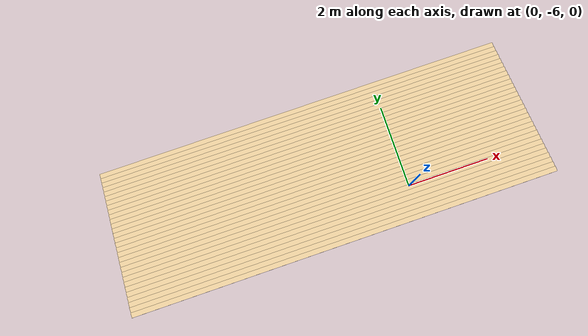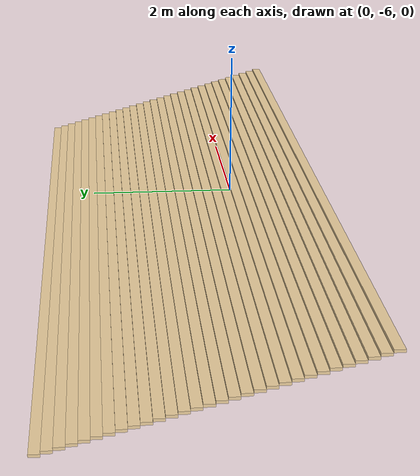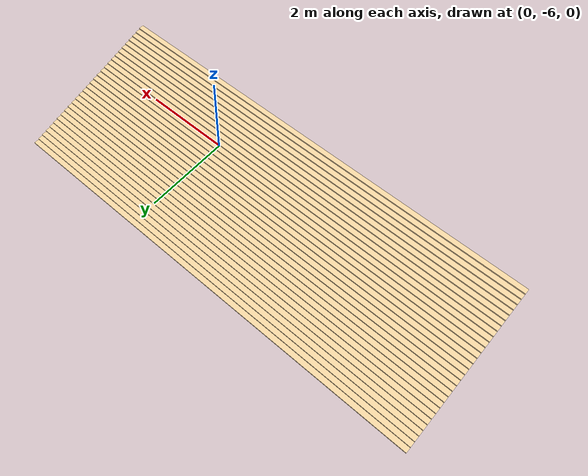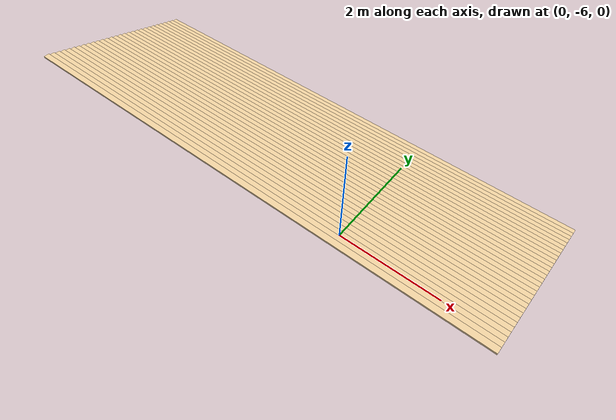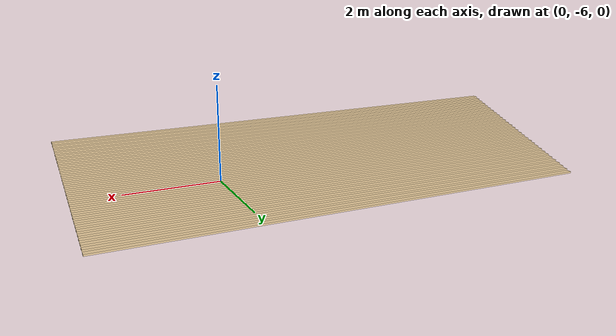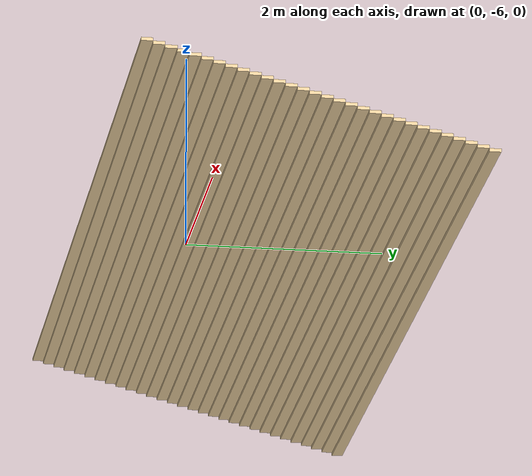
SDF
<?xml version='1.0'?>
<sdf version='1.7'>
  <model name='stair0702'>
    <pose>-1.88 -3.42 0 0 -0 0</pose>
    <link name='Stairs_1'>
      <visual name='Stairs_1_Visual_0'>
        <pose>0 0.021667 0.016667 0 -0 0</pose>
        <geometry>
          <box>
            <size>10 0.116667 0.033333</size>
          </box>
        </geometry>
        <material>
          <script>
            <uri>file://media/materials/scripts/gazebo.material</uri>
            <name>Gazebo/Grey</name>
          </script>
          <ambient>0.921569 0.807843 0.615686 1</ambient>
        </material>
        <meta>
          <layer>0</layer>
        </meta>
      </visual>
      <collision name='Stairs_1_Collision_0'>
        <geometry>
          <box>
            <size>10 0.116667 0.033333</size>
          </box>
        </geometry>
        <pose>0 0.021667 0.016667 0 -0 0</pose>
      </collision>
      <visual name='Stairs_1_Visual_1'>
        <pose>0 -0.095 0.05 0 -0 0</pose>
        <geometry>
          <box>
            <size>10 0.116667 0.033333</size>
          </box>
        </geometry>
        <material>
          <script>
            <uri>file://media/materials/scripts/gazebo.material</uri>
            <name>Gazebo/Grey</name>
          </script>
          <ambient>0.921569 0.807843 0.615686 1</ambient>
        </material>
        <meta>
          <layer>0</layer>
        </meta>
      </visual>
      <collision name='Stairs_1_Collision_1'>
        <geometry>
          <box>
            <size>10 0.116667 0.033333</size>
          </box>
        </geometry>
        <pose>0 -0.095 0.05 0 -0 0</pose>
      </collision>
      <visual name='Stairs_1_Visual_2'>
        <pose>0 -0.211667 0.083333 0 -0 0</pose>
        <geometry>
          <box>
            <size>10 0.116667 0.033333</size>
          </box>
        </geometry>
        <material>
          <script>
            <uri>file://media/materials/scripts/gazebo.material</uri>
            <name>Gazebo/Grey</name>
          </script>
          <ambient>0.921569 0.807843 0.615686 1</ambient>
        </material>
        <meta>
          <layer>0</layer>
        </meta>
      </visual>
      <collision name='Stairs_1_Collision_2'>
        <geometry>
          <box>
            <size>10 0.116667 0.033333</size>
          </box>
        </geometry>
        <pose>0 -0.211667 0.083333 0 -0 0</pose>
      </collision>
      <visual name='Stairs_1_Visual_3'>
        <pose>0 -0.328333 0.116667 0 -0 0</pose>
        <geometry>
          <box>
            <size>10 0.116667 0.033333</size>
          </box>
        </geometry>
        <material>
          <script>
            <uri>file://media/materials/scripts/gazebo.material</uri>
            <name>Gazebo/Grey</name>
          </script>
          <ambient>0.921569 0.807843 0.615686 1</ambient>
        </material>
        <meta>
          <layer>0</layer>
        </meta>
      </visual>
      <collision name='Stairs_1_Collision_3'>
        <geometry>
          <box>
            <size>10 0.116667 0.033333</size>
          </box>
        </geometry>
        <pose>0 -0.328333 0.116667 0 -0 0</pose>
      </collision>
      <visual name='Stairs_1_Visual_4'>
        <pose>0 -0.445 0.15 0 -0 0</pose>
        <geometry>
          <box>
            <size>10 0.116667 0.033333</size>
          </box>
        </geometry>
        <material>
          <script>
            <uri>file://media/materials/scripts/gazebo.material</uri>
            <name>Gazebo/Grey</name>
          </script>
          <ambient>0.921569 0.807843 0.615686 1</ambient>
        </material>
        <meta>
          <layer>0</layer>
        </meta>
      </visual>
      <collision name='Stairs_1_Collision_4'>
        <geometry>
          <box>
            <size>10 0.116667 0.033333</size>
          </box>
        </geometry>
        <pose>0 -0.445 0.15 0 -0 0</pose>
      </collision>
      <visual name='Stairs_1_Visual_5'>
        <pose>0 -0.561667 0.183333 0 -0 0</pose>
        <geometry>
          <box>
            <size>10 0.116667 0.033333</size>
          </box>
        </geometry>
        <material>
          <script>
            <uri>file://media/materials/scripts/gazebo.material</uri>
            <name>Gazebo/Grey</name>
          </script>
          <ambient>0.921569 0.807843 0.615686 1</ambient>
        </material>
        <meta>
          <layer>0</layer>
        </meta>
      </visual>
      <collision name='Stairs_1_Collision_5'>
        <geometry>
          <box>
            <size>10 0.116667 0.033333</size>
          </box>
        </geometry>
        <pose>0 -0.561667 0.183333 0 -0 0</pose>
      </collision>
      <visual name='Stairs_1_Visual_6'>
        <pose>0 -0.678333 0.216667 0 -0 0</pose>
        <geometry>
          <box>
            <size>10 0.116667 0.033333</size>
          </box>
        </geometry>
        <material>
          <script>
            <uri>file://media/materials/scripts/gazebo.material</uri>
            <name>Gazebo/Grey</name>
          </script>
          <ambient>0.921569 0.807843 0.615686 1</ambient>
        </material>
        <meta>
          <layer>0</layer>
        </meta>
      </visual>
      <collision name='Stairs_1_Collision_6'>
        <geometry>
          <box>
            <size>10 0.116667 0.033333</size>
          </box>
        </geometry>
        <pose>0 -0.678333 0.216667 0 -0 0</pose>
      </collision>
      <visual name='Stairs_1_Visual_7'>
        <pose>0 -0.795 0.25 0 -0 0</pose>
        <geometry>
          <box>
            <size>10 0.116667 0.033333</size>
          </box>
        </geometry>
        <material>
          <script>
            <uri>file://media/materials/scripts/gazebo.material</uri>
            <name>Gazebo/Grey</name>
          </script>
          <ambient>0.921569 0.807843 0.615686 1</ambient>
        </material>
        <meta>
          <layer>0</layer>
        </meta>
      </visual>
      <collision name='Stairs_1_Collision_7'>
        <geometry>
          <box>
            <size>10 0.116667 0.033333</size>
          </box>
        </geometry>
        <pose>0 -0.795 0.25 0 -0 0</pose>
      </collision>
      <visual name='Stairs_1_Visual_8'>
        <pose>0 -0.911667 0.283333 0 -0 0</pose>
        <geometry>
          <box>
            <size>10 0.116667 0.033333</size>
          </box>
        </geometry>
        <material>
          <script>
            <uri>file://media/materials/scripts/gazebo.material</uri>
            <name>Gazebo/Grey</name>
          </script>
          <ambient>0.921569 0.807843 0.615686 1</ambient>
        </material>
        <meta>
          <layer>0</layer>
        </meta>
      </visual>
      <collision name='Stairs_1_Collision_8'>
        <geometry>
          <box>
            <size>10 0.116667 0.033333</size>
          </box>
        </geometry>
        <pose>0 -0.911667 0.283333 0 -0 0</pose>
      </collision>
      <visual name='Stairs_1_Visual_9'>
        <pose>0 -1.02833 0.316667 0 -0 0</pose>
        <geometry>
          <box>
            <size>10 0.116667 0.033333</size>
          </box>
        </geometry>
        <material>
          <script>
            <uri>file://media/materials/scripts/gazebo.material</uri>
            <name>Gazebo/Grey</name>
          </script>
          <ambient>0.921569 0.807843 0.615686 1</ambient>
        </material>
        <meta>
          <layer>0</layer>
        </meta>
      </visual>
      <collision name='Stairs_1_Collision_9'>
        <geometry>
          <box>
            <size>10 0.116667 0.033333</size>
          </box>
        </geometry>
        <pose>0 -1.02833 0.316667 0 -0 0</pose>
      </collision>
      <visual name='Stairs_1_Visual_10'>
        <pose>0 -1.145 0.35 0 -0 0</pose>
        <geometry>
          <box>
            <size>10 0.116667 0.033333</size>
          </box>
        </geometry>
        <material>
          <script>
            <uri>file://media/materials/scripts/gazebo.material</uri>
            <name>Gazebo/Grey</name>
          </script>
          <ambient>0.921569 0.807843 0.615686 1</ambient>
        </material>
        <meta>
          <layer>0</layer>
        </meta>
      </visual>
      <collision name='Stairs_1_Collision_10'>
        <geometry>
          <box>
            <size>10 0.116667 0.033333</size>
          </box>
        </geometry>
        <pose>0 -1.145 0.35 0 -0 0</pose>
      </collision>
      <visual name='Stairs_1_Visual_11'>
        <pose>0 -1.26167 0.383333 0 -0 0</pose>
        <geometry>
          <box>
            <size>10 0.116667 0.033333</size>
          </box>
        </geometry>
        <material>
          <script>
            <uri>file://media/materials/scripts/gazebo.material</uri>
            <name>Gazebo/Grey</name>
          </script>
          <ambient>0.921569 0.807843 0.615686 1</ambient>
        </material>
        <meta>
          <layer>0</layer>
        </meta>
      </visual>
      <collision name='Stairs_1_Collision_11'>
        <geometry>
          <box>
            <size>10 0.116667 0.033333</size>
          </box>
        </geometry>
        <pose>0 -1.26167 0.383333 0 -0 0</pose>
      </collision>
      <visual name='Stairs_1_Visual_12'>
        <pose>0 -1.37833 0.416667 0 -0 0</pose>
        <geometry>
          <box>
            <size>10 0.116667 0.033333</size>
          </box>
        </geometry>
        <material>
          <script>
            <uri>file://media/materials/scripts/gazebo.material</uri>
            <name>Gazebo/Grey</name>
          </script>
          <ambient>0.921569 0.807843 0.615686 1</ambient>
        </material>
        <meta>
          <layer>0</layer>
        </meta>
      </visual>
      <collision name='Stairs_1_Collision_12'>
        <geometry>
          <box>
            <size>10 0.116667 0.033333</size>
          </box>
        </geometry>
        <pose>0 -1.37833 0.416667 0 -0 0</pose>
      </collision>
      <visual name='Stairs_1_Visual_13'>
        <pose>0 -1.495 0.45 0 -0 0</pose>
        <geometry>
          <box>
            <size>10 0.116667 0.033333</size>
          </box>
        </geometry>
        <material>
          <script>
            <uri>file://media/materials/scripts/gazebo.material</uri>
            <name>Gazebo/Grey</name>
          </script>
          <ambient>0.921569 0.807843 0.615686 1</ambient>
        </material>
        <meta>
          <layer>0</layer>
        </meta>
      </visual>
      <collision name='Stairs_1_Collision_13'>
        <geometry>
          <box>
            <size>10 0.116667 0.033333</size>
          </box>
        </geometry>
        <pose>0 -1.495 0.45 0 -0 0</pose>
      </collision>
      <visual name='Stairs_1_Visual_14'>
        <pose>0 -1.61167 0.483333 0 -0 0</pose>
        <geometry>
          <box>
            <size>10 0.116667 0.033333</size>
          </box>
        </geometry>
        <material>
          <script>
            <uri>file://media/materials/scripts/gazebo.material</uri>
            <name>Gazebo/Grey</name>
          </script>
          <ambient>0.921569 0.807843 0.615686 1</ambient>
        </material>
        <meta>
          <layer>0</layer>
        </meta>
      </visual>
      <collision name='Stairs_1_Collision_14'>
        <geometry>
          <box>
            <size>10 0.116667 0.033333</size>
          </box>
        </geometry>
        <pose>0 -1.61167 0.483333 0 -0 0</pose>
      </collision>
      <visual name='Stairs_1_Visual_15'>
        <pose>0 -1.72833 0.516667 0 -0 0</pose>
        <geometry>
          <box>
            <size>10 0.116667 0.033333</size>
          </box>
        </geometry>
        <material>
          <script>
            <uri>file://media/materials/scripts/gazebo.material</uri>
            <name>Gazebo/Grey</name>
          </script>
          <ambient>0.921569 0.807843 0.615686 1</ambient>
        </material>
        <meta>
          <layer>0</layer>
        </meta>
      </visual>
      <collision name='Stairs_1_Collision_15'>
        <geometry>
          <box>
            <size>10 0.116667 0.033333</size>
          </box>
        </geometry>
        <pose>0 -1.72833 0.516667 0 -0 0</pose>
      </collision>
      <visual name='Stairs_1_Visual_16'>
        <pose>0 -1.845 0.55 0 -0 0</pose>
        <geometry>
          <box>
            <size>10 0.116667 0.033333</size>
          </box>
        </geometry>
        <material>
          <script>
            <uri>file://media/materials/scripts/gazebo.material</uri>
            <name>Gazebo/Grey</name>
          </script>
          <ambient>0.921569 0.807843 0.615686 1</ambient>
        </material>
        <meta>
          <layer>0</layer>
        </meta>
      </visual>
      <collision name='Stairs_1_Collision_16'>
        <geometry>
          <box>
            <size>10 0.116667 0.033333</size>
          </box>
        </geometry>
        <pose>0 -1.845 0.55 0 -0 0</pose>
      </collision>
      <visual name='Stairs_1_Visual_17'>
        <pose>0 -1.96167 0.583333 0 -0 0</pose>
        <geometry>
          <box>
            <size>10 0.116667 0.033333</size>
          </box>
        </geometry>
        <material>
          <script>
            <uri>file://media/materials/scripts/gazebo.material</uri>
            <name>Gazebo/Grey</name>
          </script>
          <ambient>0.921569 0.807843 0.615686 1</ambient>
        </material>
        <meta>
          <layer>0</layer>
        </meta>
      </visual>
      <collision name='Stairs_1_Collision_17'>
        <geometry>
          <box>
            <size>10 0.116667 0.033333</size>
          </box>
        </geometry>
        <pose>0 -1.96167 0.583333 0 -0 0</pose>
      </collision>
      <visual name='Stairs_1_Visual_18'>
        <pose>0 -2.07833 0.616667 0 -0 0</pose>
        <geometry>
          <box>
            <size>10 0.116667 0.033333</size>
          </box>
        </geometry>
        <material>
          <script>
            <uri>file://media/materials/scripts/gazebo.material</uri>
            <name>Gazebo/Grey</name>
          </script>
          <ambient>0.921569 0.807843 0.615686 1</ambient>
        </material>
        <meta>
          <layer>0</layer>
        </meta>
      </visual>
      <collision name='Stairs_1_Collision_18'>
        <geometry>
          <box>
            <size>10 0.116667 0.033333</size>
          </box>
        </geometry>
        <pose>0 -2.07833 0.616667 0 -0 0</pose>
      </collision>
      <visual name='Stairs_1_Visual_19'>
        <pose>0 -2.195 0.65 0 -0 0</pose>
        <geometry>
          <box>
            <size>10 0.116667 0.033333</size>
          </box>
        </geometry>
        <material>
          <script>
            <uri>file://media/materials/scripts/gazebo.material</uri>
            <name>Gazebo/Grey</name>
          </script>
          <ambient>0.921569 0.807843 0.615686 1</ambient>
        </material>
        <meta>
          <layer>0</layer>
        </meta>
      </visual>
      <collision name='Stairs_1_Collision_19'>
        <geometry>
          <box>
            <size>10 0.116667 0.033333</size>
          </box>
        </geometry>
        <pose>0 -2.195 0.65 0 -0 0</pose>
      </collision>
      <visual name='Stairs_1_Visual_20'>
        <pose>0 -2.31167 0.683333 0 -0 0</pose>
        <geometry>
          <box>
            <size>10 0.116667 0.033333</size>
          </box>
        </geometry>
        <material>
          <script>
            <uri>file://media/materials/scripts/gazebo.material</uri>
            <name>Gazebo/Grey</name>
          </script>
          <ambient>0.921569 0.807843 0.615686 1</ambient>
        </material>
        <meta>
          <layer>0</layer>
        </meta>
      </visual>
      <collision name='Stairs_1_Collision_20'>
        <geometry>
          <box>
            <size>10 0.116667 0.033333</size>
          </box>
        </geometry>
        <pose>0 -2.31167 0.683333 0 -0 0</pose>
      </collision>
      <visual name='Stairs_1_Visual_21'>
        <pose>0 -2.42833 0.716667 0 -0 0</pose>
        <geometry>
          <box>
            <size>10 0.116667 0.033333</size>
          </box>
        </geometry>
        <material>
          <script>
            <uri>file://media/materials/scripts/gazebo.material</uri>
            <name>Gazebo/Grey</name>
          </script>
          <ambient>0.921569 0.807843 0.615686 1</ambient>
        </material>
        <meta>
          <layer>0</layer>
        </meta>
      </visual>
      <collision name='Stairs_1_Collision_21'>
        <geometry>
          <box>
            <size>10 0.116667 0.033333</size>
          </box>
        </geometry>
        <pose>0 -2.42833 0.716667 0 -0 0</pose>
      </collision>
      <visual name='Stairs_1_Visual_22'>
        <pose>0 -2.545 0.75 0 -0 0</pose>
        <geometry>
          <box>
            <size>10 0.116667 0.033333</size>
          </box>
        </geometry>
        <material>
          <script>
            <uri>file://media/materials/scripts/gazebo.material</uri>
            <name>Gazebo/Grey</name>
          </script>
          <ambient>0.921569 0.807843 0.615686 1</ambient>
        </material>
        <meta>
          <layer>0</layer>
        </meta>
      </visual>
      <collision name='Stairs_1_Collision_22'>
        <geometry>
          <box>
            <size>10 0.116667 0.033333</size>
          </box>
        </geometry>
        <pose>0 -2.545 0.75 0 -0 0</pose>
      </collision>
      <visual name='Stairs_1_Visual_23'>
        <pose>0 -2.66167 0.783333 0 -0 0</pose>
        <geometry>
          <box>
            <size>10 0.116667 0.033333</size>
          </box>
        </geometry>
        <material>
          <script>
            <uri>file://media/materials/scripts/gazebo.material</uri>
            <name>Gazebo/Grey</name>
          </script>
          <ambient>0.921569 0.807843 0.615686 1</ambient>
        </material>
        <meta>
          <layer>0</layer>
        </meta>
      </visual>
      <collision name='Stairs_1_Collision_23'>
        <geometry>
          <box>
            <size>10 0.116667 0.033333</size>
          </box>
        </geometry>
        <pose>0 -2.66167 0.783333 0 -0 0</pose>
      </collision>
      <visual name='Stairs_1_Visual_24'>
        <pose>0 -2.77833 0.816667 0 -0 0</pose>
        <geometry>
          <box>
            <size>10 0.116667 0.033333</size>
          </box>
        </geometry>
        <material>
          <script>
            <uri>file://media/materials/scripts/gazebo.material</uri>
            <name>Gazebo/Grey</name>
          </script>
          <ambient>0.921569 0.807843 0.615686 1</ambient>
        </material>
        <meta>
          <layer>0</layer>
        </meta>
      </visual>
      <collision name='Stairs_1_Collision_24'>
        <geometry>
          <box>
            <size>10 0.116667 0.033333</size>
          </box>
        </geometry>
        <pose>0 -2.77833 0.816667 0 -0 0</pose>
      </collision>
      <visual name='Stairs_1_Visual_25'>
        <pose>0 -2.895 0.85 0 -0 0</pose>
        <geometry>
          <box>
            <size>10 0.116667 0.033333</size>
          </box>
        </geometry>
        <material>
          <script>
            <uri>file://media/materials/scripts/gazebo.material</uri>
            <name>Gazebo/Grey</name>
          </script>
          <ambient>0.921569 0.807843 0.615686 1</ambient>
        </material>
        <meta>
          <layer>0</layer>
        </meta>
      </visual>
      <collision name='Stairs_1_Collision_25'>
        <geometry>
          <box>
            <size>10 0.116667 0.033333</size>
          </box>
        </geometry>
        <pose>0 -2.895 0.85 0 -0 0</pose>
      </collision>
      <visual name='Stairs_1_Visual_26'>
        <pose>0 -3.01167 0.883333 0 -0 0</pose>
        <geometry>
          <box>
            <size>10 0.116667 0.033333</size>
          </box>
        </geometry>
        <material>
          <script>
            <uri>file://media/materials/scripts/gazebo.material</uri>
            <name>Gazebo/Grey</name>
          </script>
          <ambient>0.921569 0.807843 0.615686 1</ambient>
        </material>
        <meta>
          <layer>0</layer>
        </meta>
      </visual>
      <collision name='Stairs_1_Collision_26'>
        <geometry>
          <box>
            <size>10 0.116667 0.033333</size>
          </box>
        </geometry>
        <pose>0 -3.01167 0.883333 0 -0 0</pose>
      </collision>
      <visual name='Stairs_1_Visual_27'>
        <pose>0 -3.12833 0.916667 0 -0 0</pose>
        <geometry>
          <box>
            <size>10 0.116667 0.033333</size>
          </box>
        </geometry>
        <material>
          <script>
            <uri>file://media/materials/scripts/gazebo.material</uri>
            <name>Gazebo/Grey</name>
          </script>
          <ambient>0.921569 0.807843 0.615686 1</ambient>
        </material>
        <meta>
          <layer>0</layer>
        </meta>
      </visual>
      <collision name='Stairs_1_Collision_27'>
        <geometry>
          <box>
            <size>10 0.116667 0.033333</size>
          </box>
        </geometry>
        <pose>0 -3.12833 0.916667 0 -0 0</pose>
      </collision>
      <visual name='Stairs_1_Visual_28'>
        <pose>0 -3.245 0.95 0 -0 0</pose>
        <geometry>
          <box>
            <size>10 0.116667 0.033333</size>
          </box>
        </geometry>
        <material>
          <script>
            <uri>file://media/materials/scripts/gazebo.material</uri>
            <name>Gazebo/Grey</name>
          </script>
          <ambient>0.921569 0.807843 0.615686 1</ambient>
        </material>
        <meta>
          <layer>0</layer>
        </meta>
      </visual>
      <collision name='Stairs_1_Collision_28'>
        <geometry>
          <box>
            <size>10 0.116667 0.033333</size>
          </box>
        </geometry>
        <pose>0 -3.245 0.95 0 -0 0</pose>
      </collision>
      <visual name='Stairs_1_Visual_29'>
        <pose>0 -3.36167 0.983333 0 -0 0</pose>
        <geometry>
          <box>
            <size>10 0.116667 0.033333</size>
          </box>
        </geometry>
        <material>
          <script>
            <uri>file://media/materials/scripts/gazebo.material</uri>
            <name>Gazebo/Grey</name>
          </script>
          <ambient>0.921569 0.807843 0.615686 1</ambient>
        </material>
        <meta>
          <layer>0</layer>
        </meta>
      </visual>
      <collision name='Stairs_1_Collision_29'>
        <geometry>
          <box>
            <size>10 0.116667 0.033333</size>
          </box>
        </geometry>
        <pose>0 -3.36167 0.983333 0 -0 0</pose>
      </collision>
    </link>
    <static>1</static>
  </model>
</sdf>
